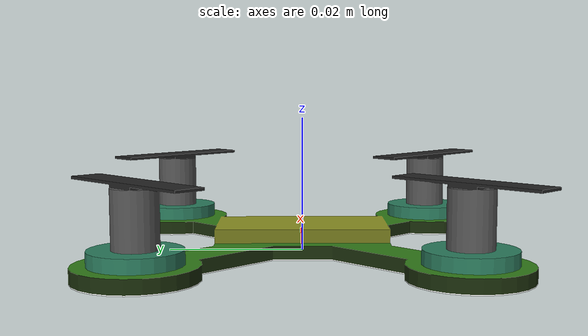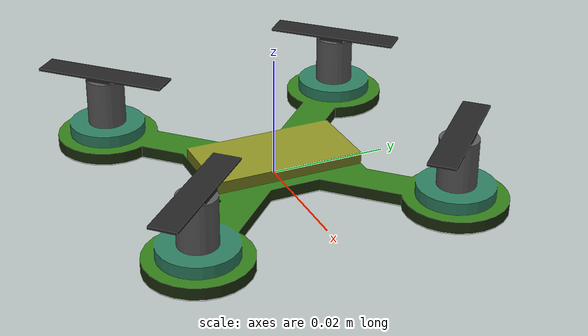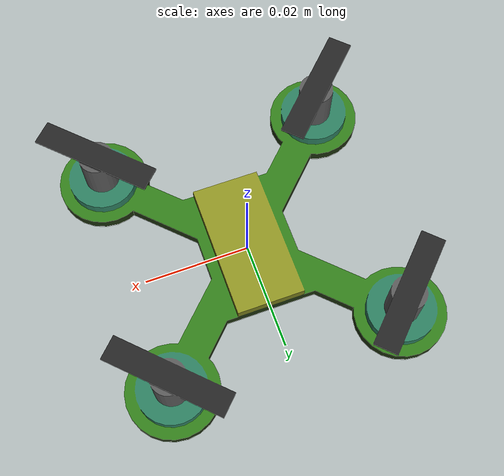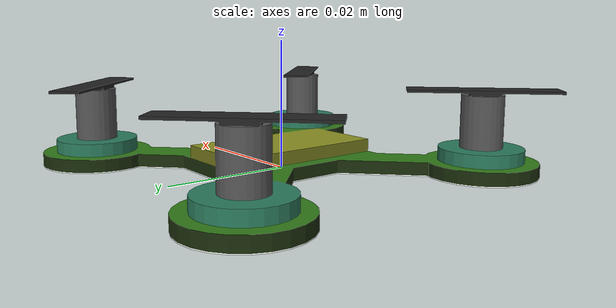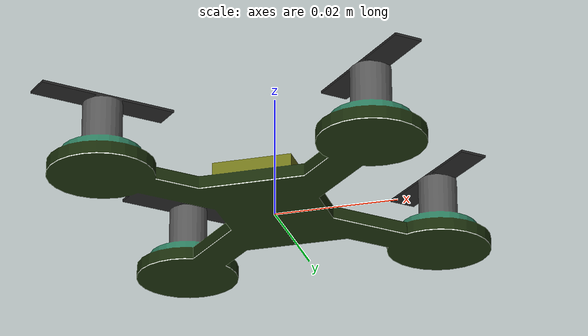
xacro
<?xml version="1.0"?>

<robot xmlns:xacro="http://www.ros.org/wiki/xacro" name="my_crazyflie4">

  <link name="base_link">
    <inertial>
      <mass value="0.019" />
      <origin xyz="0 0 0" />
      <!-- ToDo: This is not correct! -->
      <inertia ixx="0.01152" ixy="0.0" ixz="0.0" iyy="0.01152" iyz="0.0" izz="0.0218" />
    </inertial>

    <visual>
      <origin xyz="0 0 0" rpy="0 0 0" />
      <geometry>
        <mesh filename="package://map_maker/meshes/my_crazyflie4.dae"/>
      </geometry>
    </visual>

    <!-- ToDo: insert collision model -->

  </link>

</robot>
